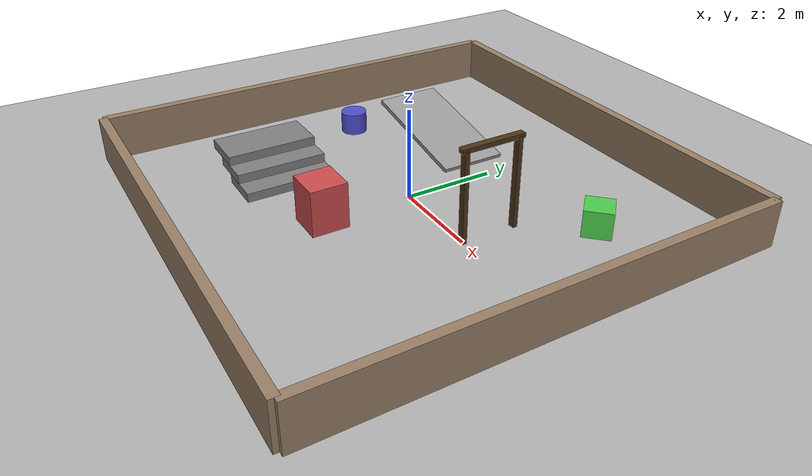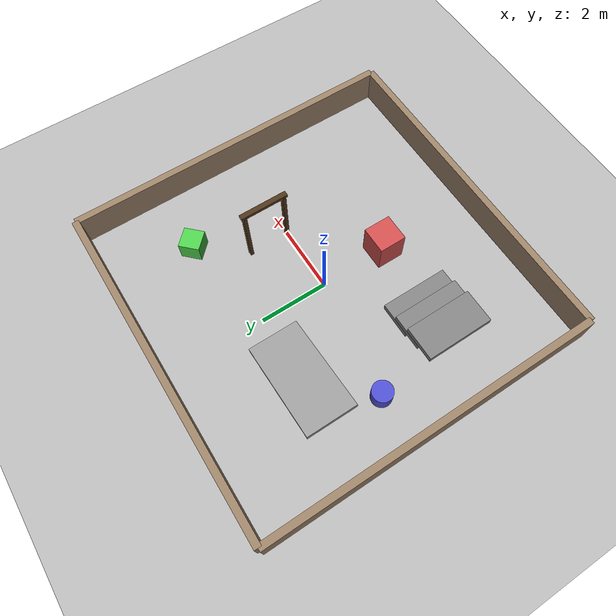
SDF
<?xml version="1.0" ?>
<sdf version="1.8">
  <world name="test_arena">

    <!-- Gravity -->
    <gravity>0 0 -9.81</gravity>

    <!-- Physics engine -->
    <physics name="dart_physics" type="dart">
      <max_step_size>0.001</max_step_size>
      <real_time_factor>1.0</real_time_factor>
      <real_time_update_rate>1000</real_time_update_rate>
    </physics>

    <!-- Lighting -->
    <light type="directional" name="sun">
      <cast_shadows>true</cast_shadows>
      <pose>5 5 10 0 0 0</pose>
      <diffuse>0.8 0.8 0.8 1</diffuse>
      <specular>0.5 0.5 0.5 1</specular>
      <direction>-0.5 -0.5 -1</direction>
    </light>

    <!-- Ambient light -->
    <light type="ambient" name="ambient">
      <diffuse>0.4 0.4 0.4 1</diffuse>
    </light>

    <!-- Ground plane (10x10 meters) -->
    <model name="ground">
      <static>true</static>
      <link name="link">
        <collision name="collision">
          <geometry>
            <plane>
              <normal>0 0 1</normal>
              <size>10 10</size>
            </plane>
          </geometry>
          <surface>
            <friction>
              <ode>
                <mu>1.0</mu>
                <mu2>1.0</mu2>
              </ode>
            </friction>
          </surface>
        </collision>
        <visual name="visual">
          <geometry>
            <plane>
              <normal>0 0 1</normal>
              <size>10 10</size>
            </plane>
          </geometry>
          <material>
            <ambient>0.7 0.7 0.7 1</ambient>
            <diffuse>0.7 0.7 0.7 1</diffuse>
          </material>
        </visual>
      </link>
    </model>

    <!-- Boundary Walls -->
    <!-- North wall -->
    <model name="wall_north">
      <pose>0 5 0.5 0 0 0</pose>
      <static>true</static>
      <link name="link">
        <collision name="collision">
          <geometry>
            <box>
              <size>10 0.2 1</size>
            </box>
          </geometry>
        </collision>
        <visual name="visual">
          <geometry>
            <box>
              <size>10 0.2 1</size>
            </box>
          </geometry>
          <material>
            <ambient>0.6 0.5 0.4 1</ambient>
            <diffuse>0.6 0.5 0.4 1</diffuse>
          </material>
        </visual>
      </link>
    </model>

    <!-- South wall -->
    <model name="wall_south">
      <pose>0 -5 0.5 0 0 0</pose>
      <static>true</static>
      <link name="link">
        <collision name="collision">
          <geometry>
            <box>
              <size>10 0.2 1</size>
            </box>
          </geometry>
        </collision>
        <visual name="visual">
          <geometry>
            <box>
              <size>10 0.2 1</size>
            </box>
          </geometry>
          <material>
            <ambient>0.6 0.5 0.4 1</ambient>
            <diffuse>0.6 0.5 0.4 1</diffuse>
          </material>
        </visual>
      </link>
    </model>

    <!-- East wall -->
    <model name="wall_east">
      <pose>5 0 0.5 0 0 0</pose>
      <static>true</static>
      <link name="link">
        <collision name="collision">
          <geometry>
            <box>
              <size>0.2 10 1</size>
            </box>
          </geometry>
        </collision>
        <visual name="visual">
          <geometry>
            <box>
              <size>0.2 10 1</size>
            </box>
          </geometry>
          <material>
            <ambient>0.6 0.5 0.4 1</ambient>
            <diffuse>0.6 0.5 0.4 1</diffuse>
          </material>
        </visual>
      </link>
    </model>

    <!-- West wall -->
    <model name="wall_west">
      <pose>-5 0 0.5 0 0 0</pose>
      <static>true</static>
      <link name="link">
        <collision name="collision">
          <geometry>
            <box>
              <size>0.2 10 1</size>
            </box>
          </geometry>
        </collision>
        <visual name="visual">
          <geometry>
            <box>
              <size>0.2 10 1</size>
            </box>
          </geometry>
          <material>
            <ambient>0.6 0.5 0.4 1</ambient>
            <diffuse>0.6 0.5 0.4 1</diffuse>
          </material>
        </visual>
      </link>
    </model>

    <!-- Doorway (1.2m width - wheelchair accessible) -->
    <model name="doorway">
      <static>true</static>

      <!-- Left frame -->
      <link name="frame_left">
        <pose>2 0 1 0 0 0</pose>
        <collision name="collision">
          <geometry>
            <box>
              <size>0.15 0.1 2</size>
            </box>
          </geometry>
        </collision>
        <visual name="visual">
          <geometry>
            <box>
              <size>0.15 0.1 2</size>
            </box>
          </geometry>
          <material>
            <ambient>0.3 0.2 0.1 1</ambient>
            <diffuse>0.3 0.2 0.1 1</diffuse>
          </material>
        </visual>
      </link>

      <!-- Right frame -->
      <link name="frame_right">
        <pose>2 1.2 1 0 0 0</pose>
        <collision name="collision">
          <geometry>
            <box>
              <size>0.15 0.1 2</size>
            </box>
          </geometry>
        </collision>
        <visual name="visual">
          <geometry>
            <box>
              <size>0.15 0.1 2</size>
            </box>
          </geometry>
          <material>
            <ambient>0.3 0.2 0.1 1</ambient>
            <diffuse>0.3 0.2 0.1 1</diffuse>
          </material>
        </visual>
      </link>

      <!-- Top frame -->
      <link name="frame_top">
        <pose>2 0.6 2 0 0 0</pose>
        <collision name="collision">
          <geometry>
            <box>
              <size>0.15 1.4 0.1</size>
            </box>
          </geometry>
        </collision>
        <visual name="visual">
          <geometry>
            <box>
              <size>0.15 1.4 0.1</size>
            </box>
          </geometry>
          <material>
            <ambient>0.3 0.2 0.1 1</ambient>
            <diffuse>0.3 0.2 0.1 1</diffuse>
          </material>
        </visual>
      </link>
    </model>

    <!-- Stairs (3 steps, 0.2m rise each) -->
    <model name="stairs">
      <static>true</static>

      <link name="step1">
        <pose>-2 -2 0.1 0 0 0</pose>
        <collision name="collision">
          <geometry>
            <box>
              <size>1 2 0.2</size>
            </box>
          </geometry>
        </collision>
        <visual name="visual">
          <geometry>
            <box>
              <size>1 2 0.2</size>
            </box>
          </geometry>
          <material>
            <ambient>0.5 0.5 0.5 1</ambient>
            <diffuse>0.5 0.5 0.5 1</diffuse>
          </material>
        </visual>
      </link>

      <link name="step2">
        <pose>-2.5 -2 0.3 0 0 0</pose>
        <collision name="collision">
          <geometry>
            <box>
              <size>1 2 0.2</size>
            </box>
          </geometry>
        </collision>
        <visual name="visual">
          <geometry>
            <box>
              <size>1 2 0.2</size>
            </box>
          </geometry>
          <material>
            <ambient>0.5 0.5 0.5 1</ambient>
            <diffuse>0.5 0.5 0.5 1</diffuse>
          </material>
        </visual>
      </link>

      <link name="step3">
        <pose>-3 -2 0.5 0 0 0</pose>
        <collision name="collision">
          <geometry>
            <box>
              <size>1 2 0.2</size>
            </box>
          </geometry>
        </collision>
        <visual name="visual">
          <geometry>
            <box>
              <size>1 2 0.2</size>
            </box>
          </geometry>
          <material>
            <ambient>0.5 0.5 0.5 1</ambient>
            <diffuse>0.5 0.5 0.5 1</diffuse>
          </material>
        </visual>
      </link>
    </model>

    <!-- Ramp (11 degree incline) -->
    <model name="ramp">
      <static>true</static>
      <link name="link">
        <pose>-2 2 0.3 0 0.19 0</pose>
        <collision name="collision">
          <geometry>
            <box>
              <size>3 1.5 0.1</size>
            </box>
          </geometry>
        </collision>
        <visual name="visual">
          <geometry>
            <box>
              <size>3 1.5 0.1</size>
            </box>
          </geometry>
          <material>
            <ambient>0.6 0.6 0.6 1</ambient>
            <diffuse>0.6 0.6 0.6 1</diffuse>
          </material>
        </visual>
      </link>
    </model>

    <!-- Box obstacles -->
    <model name="obstacle_1">
      <pose>0 -2 0.5 0 0 0</pose>
      <static>true</static>
      <link name="link">
        <collision name="collision">
          <geometry>
            <box>
              <size>0.8 0.8 1</size>
            </box>
          </geometry>
        </collision>
        <visual name="visual">
          <geometry>
            <box>
              <size>0.8 0.8 1</size>
            </box>
          </geometry>
          <material>
            <ambient>0.8 0.3 0.3 1</ambient>
            <diffuse>0.8 0.3 0.3 1</diffuse>
          </material>
        </visual>
      </link>
    </model>

    <model name="obstacle_2">
      <pose>3 2.5 0.3 0 0 0.785</pose>
      <static>true</static>
      <link name="link">
        <collision name="collision">
          <geometry>
            <box>
              <size>0.6 0.6 0.6</size>
            </box>
          </geometry>
        </collision>
        <visual name="visual">
          <geometry>
            <box>
              <size>0.6 0.6 0.6</size>
            </box>
          </geometry>
          <material>
            <ambient>0.3 0.8 0.3 1</ambient>
            <diffuse>0.3 0.8 0.3 1</diffuse>
          </material>
        </visual>
      </link>
    </model>

    <model name="obstacle_3">
      <pose>-3.5 0.5 0.25 0 0 0</pose>
      <static>true</static>
      <link name="link">
        <collision name="collision">
          <geometry>
            <cylinder>
              <radius>0.3</radius>
              <length>0.5</length>
            </cylinder>
          </geometry>
        </collision>
        <visual name="visual">
          <geometry>
            <cylinder>
              <radius>0.3</radius>
              <length>0.5</length>
            </cylinder>
          </geometry>
          <material>
            <ambient>0.3 0.3 0.8 1</ambient>
            <diffuse>0.3 0.3 0.8 1</diffuse>
          </material>
        </visual>
      </link>
    </model>

  </world>
</sdf>
